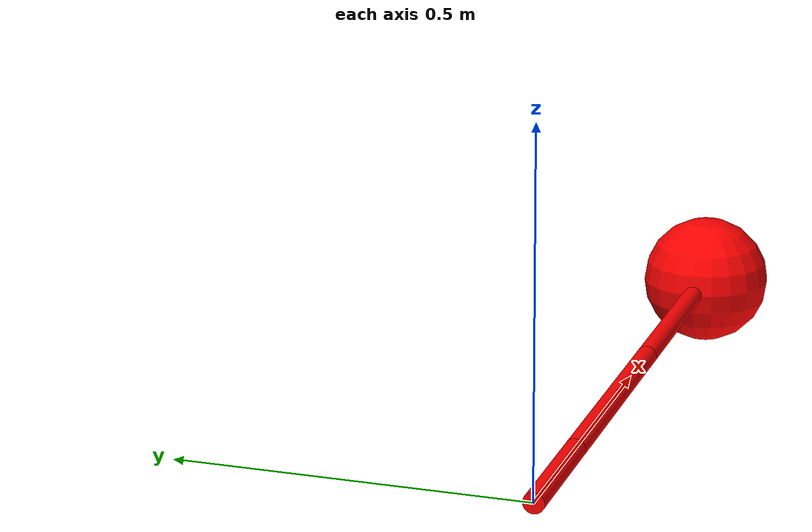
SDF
<?xml version="1.0" ?>
<sdf version="1.5">
  <model name="fire_hose_long_curled">
    <pose>0 0 0 0 0 0</pose>
    <link name="link_00">
      <gravity>true</gravity>
      <pose>0 0 0 0 0 0</pose>
      <inertial>
        <mass>0.001</mass>
        <pose>0.1 0 0 0 0 0</pose>
        <inertia>
          <ixx>0.01</ixx>
          <ixy>0</ixy>
          <ixz>0</ixz>
          <iyy>0.01</iyy>
          <iyz>0</iyz>
          <izz>0.01</izz>
        </inertia>
      </inertial>
      <collision name="collision">
        <pose>0.1 0 0 0 1.570790 0</pose>
        <geometry>
          <cylinder>
            <length>0.2</length>
            <radius>0.015</radius>
          </cylinder>
        </geometry>
        <surface>
          <contact>
            <ode>
              <min_depth>0.005</min_depth>
            </ode>
          </contact>
          <friction>
            <ode>
              <mu>1.0</mu>
              <mu2>1.0</mu2>
            </ode>
          </friction>
        </surface>
      </collision>
      <visual name="visual">
        <pose>0.1 0 0 0 1.570790 0</pose>
        <geometry>
          <cylinder>
            <length>0.2</length>
            <radius>0.015</radius>
          </cylinder>
        </geometry>
        <material>
          <ambient>1 0 0 1</ambient>
          <diffuse>1 0 0 1</diffuse>
          <specular>0.1 0.1 0.1 1</specular>
          <emissive>0 0 0 0</emissive>
        </material>
      </visual>
    </link>
    <joint name="joint_00_01" type="universal">
      <parent>link_00</parent>
      <child>link_01</child>
      <axis>
        <xyz>0 1 0</xyz>
        <limit>
          <lower>-1.57</lower>
          <upper>1.57</upper>
        </limit>
        <dynamics>
          <damping>1.0</damping>
        </dynamics>
        <use_parent_model_frame>true</use_parent_model_frame>
      </axis>
      <axis2>
        <xyz>0 0 1</xyz>
        <limit>
          <lower>-1.57</lower>
          <upper>1.57</upper>
        </limit>
        <dynamics>
          <damping>1.0</damping>
        </dynamics>
        <use_parent_model_frame>true</use_parent_model_frame>
      </axis2>
      <physics>
        <ode>
          <cfm_damping>1</cfm_damping>
        </ode>
      </physics>
    </joint>
    <link name="link_01">
      <gravity>true</gravity>
      <pose>0.2 0 0 0 0 0</pose>
      <inertial>
        <mass>0.01</mass>
        <pose>0.2 0 0 0 0 0</pose>
        <inertia>
          <ixx>0.01</ixx>
          <ixy>0</ixy>
          <ixz>0</ixz>
          <iyy>0.01</iyy>
          <iyz>0</iyz>
          <izz>0.01</izz>
        </inertia>
      </inertial>
      <collision name="collision">
        <pose>0.2 0 0 0 1.570790 0</pose>
        <geometry>
          <cylinder>
            <length>0.4</length>
            <radius>0.015</radius>
          </cylinder>
        </geometry>
        <surface>
          <contact>
            <ode>
              <min_depth>0.005</min_depth>
            </ode>
          </contact>
          <friction>
            <ode>
              <mu>1.0</mu>
              <mu2>1.0</mu2>
            </ode>
          </friction>
        </surface>
      </collision>
      <visual name="visual">
        <pose>0.2 0 0 0 1.570790 0</pose>
        <geometry>
          <cylinder>
            <length>0.4</length>
            <radius>0.015</radius>
          </cylinder>
        </geometry>
        <material>
          <ambient>1 0 0 1</ambient>
          <diffuse>1 0 0 1</diffuse>
          <specular>0.1 0.1 0.1 1</specular>
          <emissive>0 0 0 0</emissive>
        </material>
      </visual>
    </link>
    <joint name="joint_01_02" type="universal">
      <parent>link_01</parent>
      <child>link_02</child>
      <axis>
        <xyz>0 1 0</xyz>
        <limit>
          <lower>-1.57</lower>
          <upper>1.57</upper>
        </limit>
        <dynamics>
          <damping>1.0</damping>
        </dynamics>
        <use_parent_model_frame>true</use_parent_model_frame>
      </axis>
      <axis2>
        <xyz>0 0 1</xyz>
        <limit>
          <lower>-1.57</lower>
          <upper>1.57</upper>
        </limit>
        <dynamics>
          <damping>1.0</damping>
        </dynamics>
        <use_parent_model_frame>true</use_parent_model_frame>
      </axis2>
      <physics>
        <ode>
          <cfm_damping>1</cfm_damping>
        </ode>
      </physics>
    </joint>
    <link name="link_02">
      <gravity>true</gravity>
      <pose>0.6 0 0 0 0 0</pose>
      <inertial>
        <mass>0.01</mass>
        <pose>0.2 0 0 0 0 0</pose>
        <inertia>
          <ixx>0.01</ixx>
          <ixy>0</ixy>material
          <iyz>0</iyz>
          <izz>0.01</izz>
        </inertia>
      </inertial>
      <collision name="collision">
        <pose>0.2 0 0 0 1.570790 0</pose>
        <geometry>
          <cylinder>
            <length>0.4</length>
            <radius>0.015</radius>
          </cylinder>
        </geometry>
        <surface>
          <contact>
            <ode>
              <min_depth>0.005</min_depth>
            </ode>
          </contact>
          <friction>
            <ode>
              <mu>1.0</mu>
              <mu2>1.0</mu2>
            </ode>
          </friction>
        </surface>
      </collision>
      <visual name="visual">
        <pose>0.2 0 0 0 1.570790 0</pose>
        <geometry>
          <cylinder>
            <length>0.4</length>
            <radius>0.015</radius>
          </cylinder>
        </geometry>
        <material>
          <ambient>1 0 0 1</ambient>
          <diffuse>1 0 0 1</diffuse>
          <specular>0.1 0.1 0.1 1</specular>
          <emissive>0 0 0 0</emissive>
        </material>
      </visual>
    </link>
    <joint name="joint_02_cable" type="universal">
      <parent>link_02</parent>
      <child>cable_ball</child>
      <axis>
        <xyz>0 1 0</xyz>
        <limit>
          <lower>-1.57</lower>
          <upper>1.57</upper>
        </limit>
        <dynamics>
          <damping>1.0</damping>
        </dynamics>
        <use_parent_model_frame>true</use_parent_model_frame>
      </axis>
      <axis2>
        <xyz>0 0 1</xyz>
        <limit>
          <lower>-1.57</lower>
          <upper>1.57</upper>
        </limit>
        <dynamics>
          <damping>1.0</damping>
        </dynamics>
        <use_parent_model_frame>true</use_parent_model_frame>
      </axis2>
      <physics>
        <ode>
          <cfm_damping>1</cfm_damping>
        </ode>
      </physics>
    </joint>
    <link name="cable_ball">
      <pose>1.0 0 0 0 0 0</pose>
      <inertial>
        <mass>0.1</mass>
        <inertia>
          <ixx>0.01</ixx>
          <ixy>0</ixy>
          <ixz>0</ixz>
          <iyy>0.01</iyy>
          <iyz>0</iyz>
          <izz>0.01</izz>
        </inertia>
      </inertial>
      <collision name="cable_ball_collision">
        <geometry>
          <sphere>
            <radius>0.1</radius>
          </sphere>
        </geometry>
        <surface>
          <contact>
            <ode>
              <min_depth>0.005</min_depth>
            </ode>
          </contact>
          <friction>
            <ode>
              <mu>1.0</mu>
              <mu2>1.0</mu2>
            </ode>
          </friction>
        </surface>
      </collision>
      <visual name="cable_ball_visual">
        <geometry>
          <sphere>
            <radius>0.1</radius>
          </sphere>
        </geometry>
        <material>
          <ambient>1 0 0 1</ambient>
          <diffuse>1 0 0 1</diffuse>
          <specular>0.1 0.1 0.1 1</specular>
          <emissive>0 0 0 0</emissive>
        </material>
      </visual>
    </link>
  </model>
</sdf>
